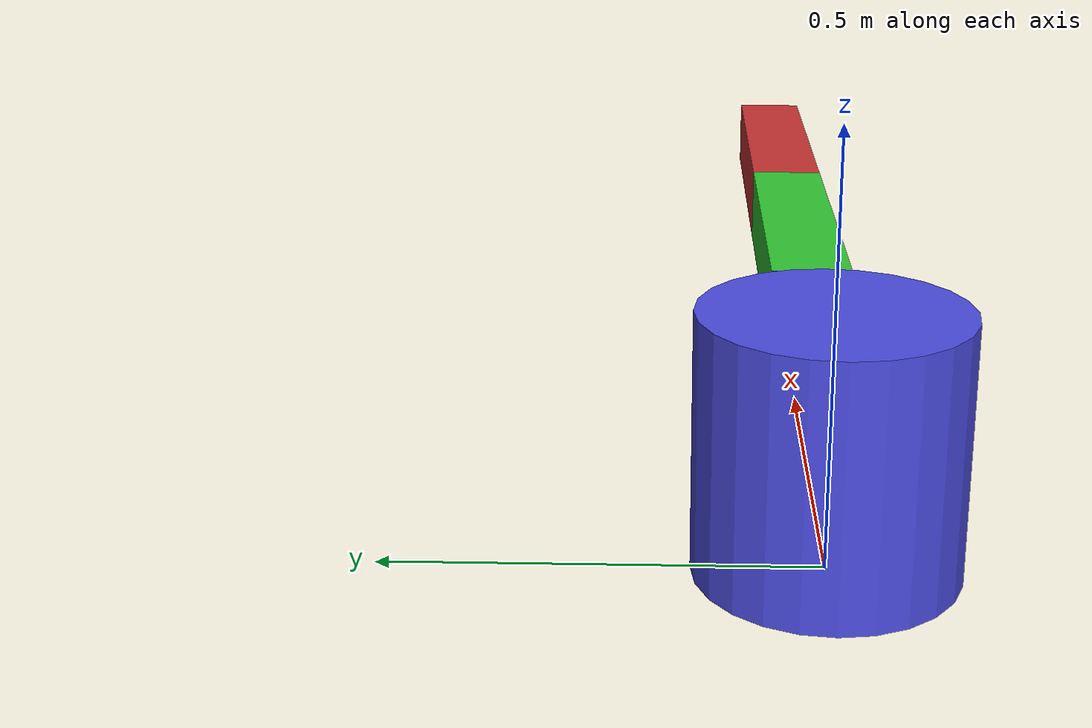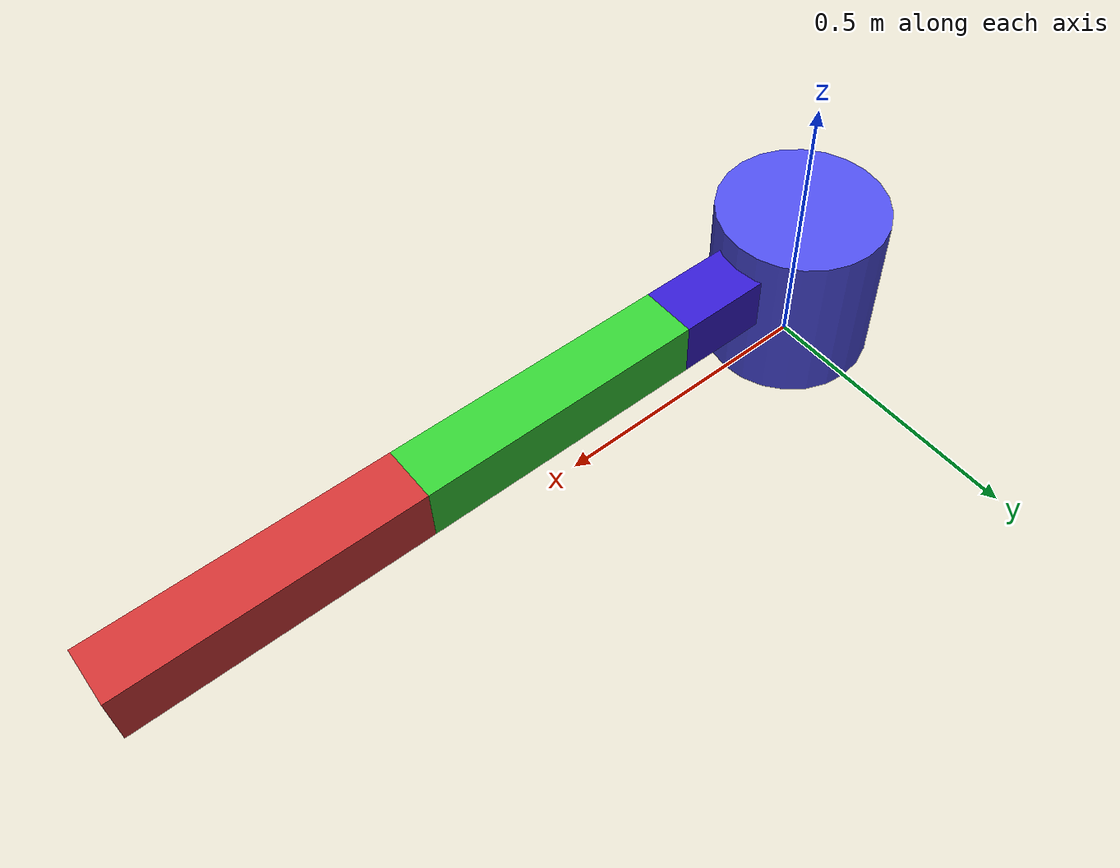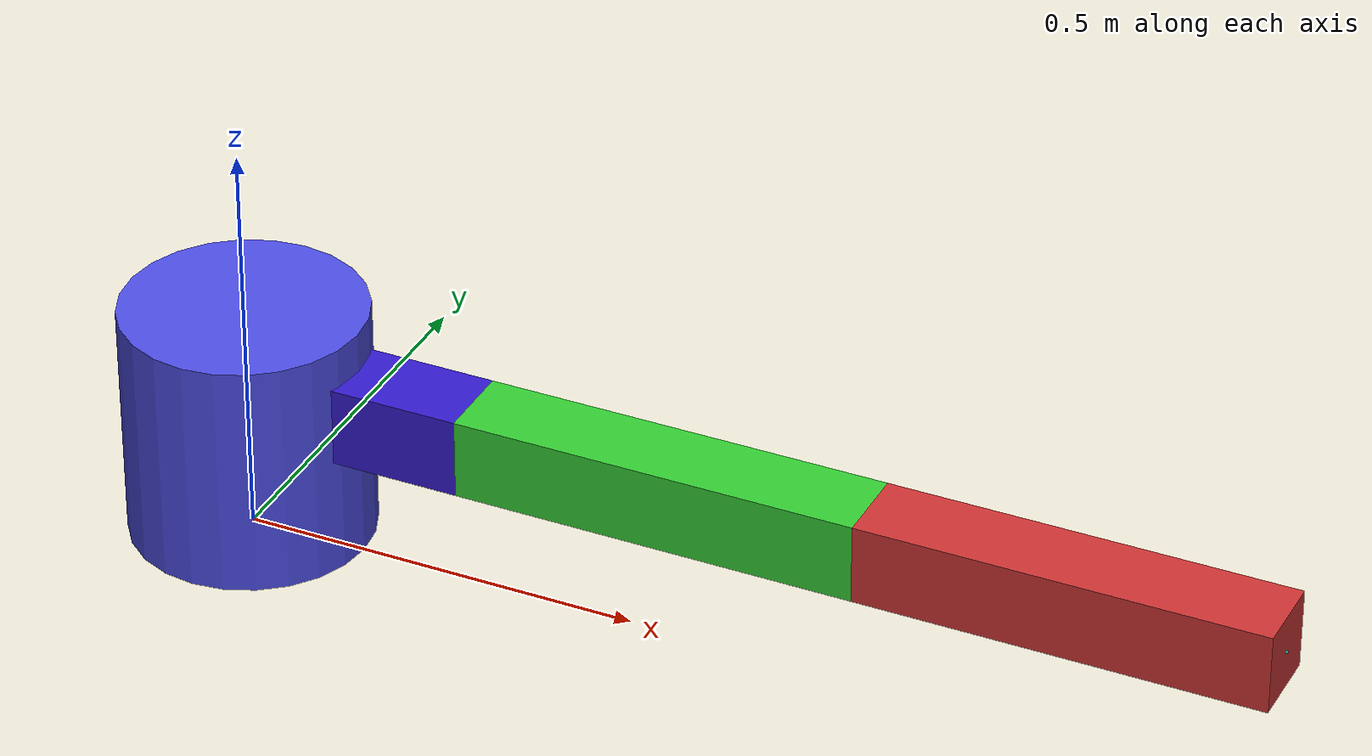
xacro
<?xml version="1.0"?>
<robot xmlns:xacro="http://www.ros.org/wiki/xacro" name="threelink_easy">
  <xacro:property name="PI" value="3.14159265359"/>

  <!-- Mass and geometry (kept from the original file) -->
  <xacro:property name="link_mass" value="3.0"/>
  <xacro:property name="base_mass" value="5.0"/>
  <xacro:property name="link1_length" value="0.3"/>
  <xacro:property name="link_length" value="0.5"/>
  <xacro:property name="link_width" value="0.1"/>
  <xacro:property name="link_height" value="0.1"/>

  <!-- DH parameters (all joints rotate about local Z) -->
  <xacro:property name="a1" value="${link1_length}"/>
  <xacro:property name="alpha1" value="${PI/2}"/>
  <xacro:property name="a2" value="${link_length}"/>
  <xacro:property name="alpha2" value="0.0"/>
  <xacro:property name="a3" value="${link_length}"/>
  <xacro:property name="alpha3" value="0.0"/>

  <!-- Shoulder pan joint housing -->
  <xacro:property name="joint_radius" value="0.15"/>
  <xacro:property name="joint_length" value="0.1"/>

  <!-- Standard box inertia aligned with X as the long axis -->
  <xacro:macro name="box_inertia_x" params="mass length width height com_x:=0 com_y:=0 com_z:=0">
    <inertial>
      <origin xyz="${com_x} ${com_y} ${com_z}" rpy="0 0 0"/>
      <mass value="${mass}"/>
      <inertia
        ixx="${mass * (width**2 + height**2) / 12}"
        ixy="0"
        ixz="0"
        iyy="${mass * (length**2 + height**2) / 12}"
        iyz="0"
        izz="${mass * (length**2 + width**2) / 12}"/>
    </inertial>
  </xacro:macro>

  <!-- World link (root for Gazebo) -->
  <link name="world"/>

  <!-- Link 1: Shoulder pan link -->
  <link name="shoulder_pan_link">
    <visual>
      <origin xyz="${a1/2} 0 0.2" rpy="0 0 0"/>
      <geometry>
        <box size="${a1} ${link_width} ${link_width}"/>
      </geometry>
      <material name="link1_color">
        <color rgba="0.2 0.1 0.8 1.0"/>
      </material>
    </visual>
    <visual>
      <origin xyz="0 0 0.15" rpy="0 0 0"/>
      <geometry>
        <cylinder radius="${joint_radius}" length="0.3"/>
      </geometry>
      <material name="joint_color">
        <color rgba="0.3 0.3 0.9 1.0"/>
      </material>
    </visual>
    <collision>
      <origin xyz="${a1/2} 0 0.2" rpy="0 0 0"/>
      <geometry>
        <box size="${a1} ${link_width} ${link_width}"/>
      </geometry>
    </collision>
    <xacro:box_inertia_x mass="${base_mass}" length="${a1}" width="${link_width}" height="${link_width}" com_x="${a1/2}" com_z="0.2"/>
  </link>

  <!-- Link 2: Shoulder lift link -->
  <link name="shoulder_lift_link">
    <visual>
      <origin xyz="${a2/2} 0 0" rpy="0 0 0"/>
      <geometry>
        <box size="${a2} ${link_width} ${link_width}"/>
      </geometry>
      <material name="link2_color">
        <color rgba="0.2 0.8 0.2 1.0"/>
      </material>
    </visual>
    <collision>
      <origin xyz="${a2/2} 0 0" rpy="0 0 0"/>
      <geometry>
        <box size="${a2} ${link_width} ${link_width}"/>
      </geometry>
    </collision>
    <xacro:box_inertia_x mass="${link_mass}" length="${a2}" width="${link_width}" height="${link_width}" com_x="${a2/2}"/>
  </link>

  <!-- Link 3: Elbow link -->
  <link name="elbow_link">
    <visual>
      <origin xyz="${a3/2} 0 0" rpy="0 0 0"/>
      <geometry>
        <box size="${a3} ${link_width} ${link_width}"/>
      </geometry>
      <material name="link3_color">
        <color rgba="0.8 0.2 0.2 1.0"/>
      </material>
    </visual>
    <collision>
      <origin xyz="${a3/2} 0 0" rpy="0 0 0"/>
      <geometry>
        <box size="${a3} ${link_width} ${link_width}"/>
      </geometry>
    </collision>
    <xacro:box_inertia_x mass="${link_mass}" length="${a3}" width="${link_width}" height="${link_width}" com_x="${a3/2}"/>
  </link>

  <!-- Tool frame at the end of the elbow link -->
  <link name="tool0">
    <inertial>
      <origin xyz="0 0 0" rpy="0 0 0"/>
      <mass value="1e-6"/>
      <inertia ixx="1e-9" ixy="0" ixz="0" iyy="1e-9" iyz="0" izz="1e-9"/>
    </inertial>
    <visual>
      <origin xyz="0 0 0" rpy="0 0 0"/>
      <geometry>
        <sphere radius="0.002"/>
      </geometry>
      <material name="tool0_color">
        <color rgba="0.1 0.8 0.8 1.0"/>
      </material>
    </visual>
    <collision>
      <origin xyz="0 0 0" rpy="0 0 0"/>
      <geometry>
        <sphere radius="0.002"/>
      </geometry>
    </collision>
  </link>

  <!-- Joints (all revolute about Z) -->
  <joint name="shoulder_pan_joint" type="revolute">
    <parent link="world"/>
    <child link="shoulder_pan_link"/>
    <origin xyz="0 0 0" rpy="0 0 0"/>
    <axis xyz="0 0 1"/>
    <limit lower="-1000.0" upper="1000.0" effort="150.0" velocity="2.0"/>
  </joint>

  <joint name="shoulder_lift_joint" type="revolute">
    <parent link="shoulder_pan_link"/>
    <child link="shoulder_lift_link"/>
    <origin xyz="${a1} 0 0.2" rpy="${alpha1} 0 0"/>
    <axis xyz="0 0 1"/>
    <limit lower="-1000.0" upper="1000.0" effort="150.0" velocity="2.0"/>
  </joint>

  <joint name="elbow_joint" type="revolute">
    <parent link="shoulder_lift_link"/>
    <child link="elbow_link"/>
    <origin xyz="${a2} 0 0" rpy="${alpha2} 0 0"/>
    <axis xyz="0 0 1"/>
    <limit lower="-1000.0" upper="1000.0" effort="150.0" velocity="2.0"/>
  </joint>

  <joint name="tool0_joint" type="fixed">
    <parent link="elbow_link"/>
    <child link="tool0"/>
    <origin xyz="${a3} 0 0" rpy="0 0 0"/>
  </joint>
  <!-- Preserve the fixed joint so tool0 remains a distinct link in Gazebo Sim. -->
  <gazebo reference="tool0_joint">
    <preserveFixedJoint>true</preserveFixedJoint>
  </gazebo>

  <!-- ros2_control block kept minimal for compatibility -->
  <ros2_control name="GazeboSimSystem" type="system">
    <hardware>
      <plugin>gz_ros2_control/GazeboSimSystem</plugin>
    </hardware>

    <joint name="shoulder_pan_joint">
      <command_interface name="position"/>
      <command_interface name="velocity"/>
      <command_interface name="effort"/>
      <state_interface name="position"/>
      <state_interface name="velocity"/>
      <state_interface name="effort"/>
    </joint>

    <joint name="shoulder_lift_joint">
      <command_interface name="position"/>
      <command_interface name="velocity"/>
      <command_interface name="effort"/>
      <state_interface name="position"/>
      <state_interface name="velocity"/>
      <state_interface name="effort"/>
    </joint>

    <joint name="elbow_joint">
      <command_interface name="position"/>
      <command_interface name="velocity"/>
      <command_interface name="effort"/>
      <state_interface name="position"/>
      <state_interface name="velocity"/>
      <state_interface name="effort"/>
    </joint>
  </ros2_control>

  <!-- Gazebo + gz_ros2_control plugin -->
  <gazebo>
    <plugin filename="gz_ros2_control-system" name="gz_ros2_control::GazeboSimROS2ControlPlugin">
      <parameters>$(find threelink_manipulator)/config/controllers.yaml</parameters>
    </plugin>
  </gazebo>

  <!-- Detachable joint plugin to attach payloads at elbow_link -->
  <gazebo>
    <plugin filename="gz-sim-detachable-joint-system" name="gz::sim::systems::DetachableJoint">
      <parent_link>elbow_link</parent_link>
      <child_model>payload_box</child_model>
      <child_link>payload_link</child_link>
      <attach_topic>/payload/attach</attach_topic>
      <detach_topic>/payload/detach</detach_topic>
    </plugin>
  </gazebo>
</robot>
